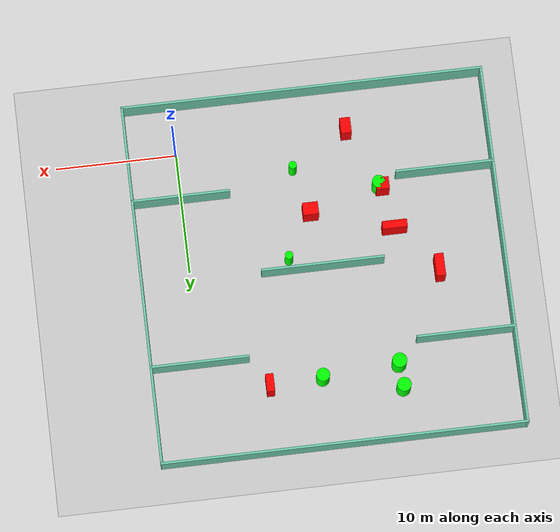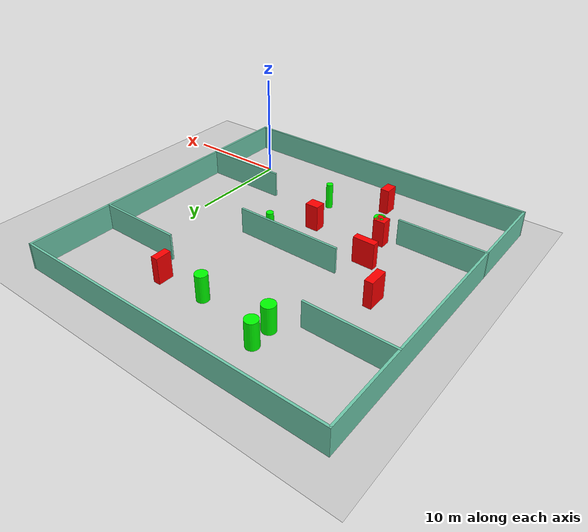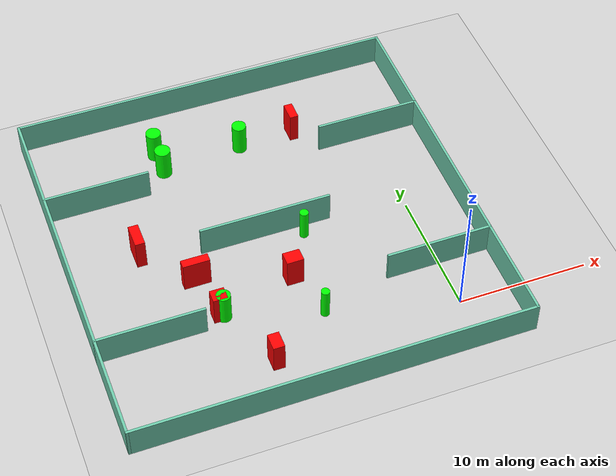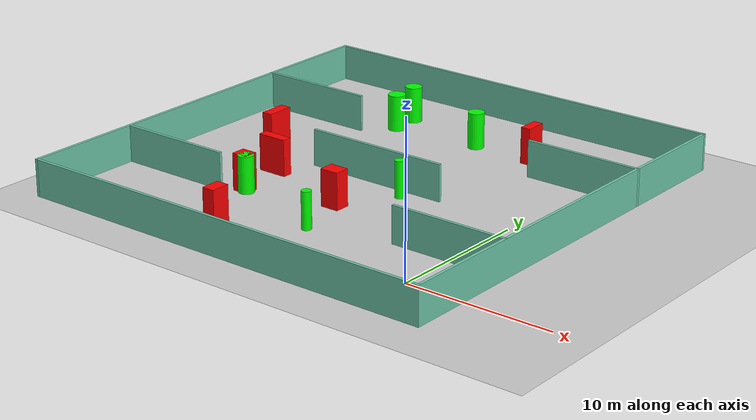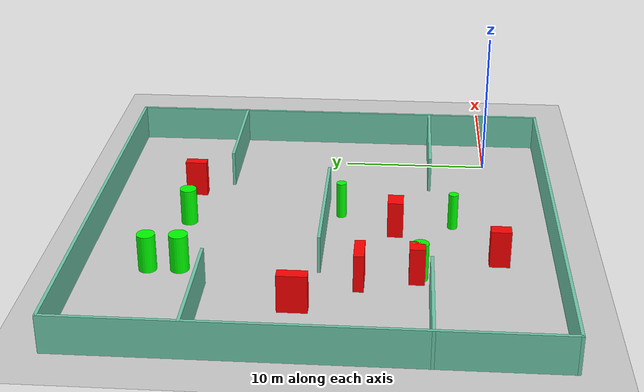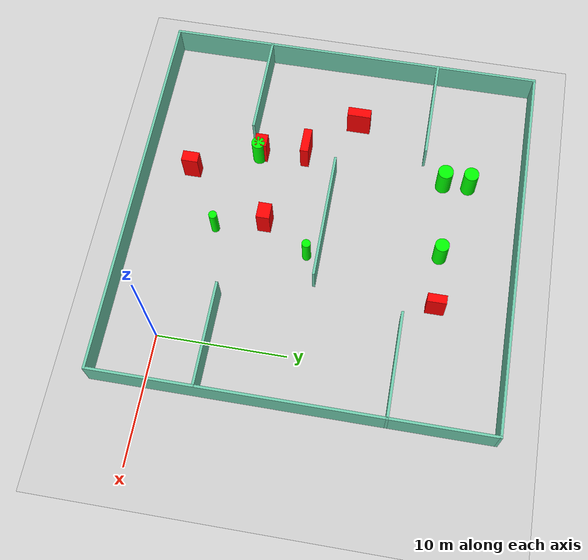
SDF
<sdf version="1.7">
 <world name="default">
  <light name="sun" type="directional">
   <pose>0 0 10 0 -0 0</pose>
   <diffuse>0.8 0.8 0.8 1</diffuse>
   <specular>0.2 0.2 0.2 1</specular>
   <attenuation>
    <range>1000</range>
    <constant>0.9</constant>
    <linear>0.01</linear>
    <quadratic>0.001</quadratic>
   </attenuation>
   <direction>-0.5 0.1 -0.9</direction>
   <spot><inner_angle>0</inner_angle><outer_angle>0</outer_angle><falloff>0</falloff></spot>
  </light>
  <model name="ground_plane">
   <static>1</static>
   <link name="link">
    <collision name="collision">
     <geometry><plane><normal>0 0 1</normal><size>100 100</size></plane></geometry>
     <surface>
      <contact><collide_bitmask>65535</collide_bitmask></contact>
      <friction><ode><mu>100</mu><mu2>50</mu2></ode></friction>
     </surface>
    </collision>
    <visual name="visual">
     <cast_shadows>0</cast_shadows>
     <geometry><plane><normal>0 0 1</normal><size>100 100</size></plane></geometry>
     <material>
      <script><uri>file://media/materials/scripts/gazebo.material</uri><name>Gazebo/Grey</name></script>
     </material>
    </visual>
   </link>
  </model>
  <gravity>0 0 -9.8</gravity>
  <magnetic_field>6e-06 2.3e-05 -4.2e-05</magnetic_field>
  <atmosphere type="adiabatic"/>
  <physics type="ode">
   <max_step_size>0.001</max_step_size>
   <real_time_factor>1</real_time_factor>
   <real_time_update_rate>1000</real_time_update_rate>
  </physics>
  <scene><ambient>0.4 0.4 0.4 1</ambient><background>0.7 0.7 0.7 1</background><shadows>1</shadows></scene>
  <spherical_coordinates>
   <surface_model>EARTH_WGS84</surface_model>
   <latitude_deg>0</latitude_deg>
   <longitude_deg>0</longitude_deg>
   <elevation>0</elevation>
   <heading_deg>0</heading_deg>
  </spherical_coordinates>
  <model name="my_base_walls">
   <link name="Wall_10">
    <collision name="Wall_10_Collision">
     <geometry><box><size>8.2 0.2 2.5</size></box></geometry>
     <pose>0 0 1.25 0 -0 0</pose>
    </collision>
    <visual name="Wall_10_Visual">
     <pose>0 0 1.25 0 -0 0</pose>
     <geometry><box><size>8.2 0.2 2.5</size></box></geometry>
     <material>
      <script><uri>file://media/materials/scripts/gazebo.material</uri><name>Gazebo/Grey</name></script>
      <ambient>0.435294 0.796078 0.67451 1</ambient>
     </material>
     <meta><layer>0</layer></meta>
    </visual>
    <pose>-11 -7 0 0 -0 0</pose>
   </link>
   <link name="Wall_12">
    <collision name="Wall_12_Collision">
     <geometry><box><size>8.2 0.2 2.5</size></box></geometry>
     <pose>0 0 1.25 0 -0 0</pose>
    </collision>
    <visual name="Wall_12_Visual">
     <pose>0 0 1.25 0 -0 0</pose>
     <geometry><box><size>8.2 0.2 2.5</size></box></geometry>
     <material>
      <script><uri>file://media/materials/scripts/gazebo.material</uri><name>Gazebo/Grey</name></script>
      <ambient>0.435294 0.796078 0.67451 1</ambient>
     </material>
     <meta><layer>0</layer></meta>
    </visual>
    <pose>-11 7 0 0 -0 0</pose>
   </link>
   <link name="Wall_14">
    <collision name="Wall_14_Collision">
     <geometry><box><size>8.2 0.2 2.5</size></box></geometry>
     <pose>0 0 1.25 0 -0 0</pose>
    </collision>
    <visual name="Wall_14_Visual">
     <pose>0 0 1.25 0 -0 0</pose>
     <geometry><box><size>8.2 0.2 2.5</size></box></geometry>
     <material>
      <script><uri>file://media/materials/scripts/gazebo.material</uri><name>Gazebo/Grey</name></script>
      <ambient>0.435294 0.796078 0.67451 1</ambient>
     </material>
     <meta><layer>0</layer></meta>
    </visual>
    <pose>11 7 0 0 -0 3.14159</pose>
   </link>
   <link name="Wall_16">
    <collision name="Wall_16_Collision">
     <geometry><box><size>10.2 0.2 2.5</size></box></geometry>
     <pose>0 0 1.25 0 -0 0</pose>
    </collision>
    <visual name="Wall_16_Visual">
     <pose>0 0 1.25 0 -0 0</pose>
     <geometry><box><size>10.2 0.2 2.5</size></box></geometry>
     <material>
      <script><uri>file://media/materials/scripts/gazebo.material</uri><name>Gazebo/Grey</name></script>
      <ambient>0.435294 0.796078 0.67451 1</ambient>
     </material>
     <meta><layer>0</layer></meta>
    </visual>
    <pose>0 0 0 0 -0 3.14159</pose>
   </link>
   <link name="Wall_2">
    <collision name="Wall_2_Collision">
     <geometry><box><size>30.2 0.2 2.5</size></box></geometry>
     <pose>0 0 1.25 0 -0 0</pose>
    </collision>
    <visual name="Wall_2_Visual">
     <pose>0 0 1.25 0 -0 0</pose>
     <geometry><box><size>30.2 0.2 2.5</size></box></geometry>
     <material>
      <script><uri>file://media/materials/scripts/gazebo.material</uri><name>Gazebo/Grey</name></script>
      <ambient>0.435294 0.796078 0.67451 1</ambient>
     </material>
     <meta><layer>0</layer></meta>
    </visual>
    <pose>0 -15 0 0 -0 3.14159</pose>
   </link>
   <link name="Wall_3">
    <collision name="Wall_3_Collision">
     <geometry><box><size>30.2 0.2 2.5</size></box></geometry>
     <pose>0 0 1.25 0 -0 0</pose>
    </collision>
    <visual name="Wall_3_Visual">
     <pose>0 0 1.25 0 -0 0</pose>
     <geometry><box><size>30.2 0.2 2.5</size></box></geometry>
     <material>
      <script><uri>file://media/materials/scripts/gazebo.material</uri><name>Gazebo/Grey</name></script>
      <ambient>0.435294 0.796078 0.67451 1</ambient>
     </material>
     <meta><layer>0</layer></meta>
    </visual>
    <pose>-15 0 0 0 -0 1.5708</pose>
   </link>
   <link name="Wall_4">
    <collision name="Wall_4_Collision">
     <geometry><box><size>30.2 0.2 2.5</size></box></geometry>
     <pose>0 0 1.25 0 -0 0</pose>
    </collision>
    <visual name="Wall_4_Visual">
     <pose>0 0 1.25 0 -0 0</pose>
     <geometry><box><size>30.2 0.2 2.5</size></box></geometry>
     <material>
      <script><uri>file://media/materials/scripts/gazebo.material</uri><name>Gazebo/Grey</name></script>
      <ambient>0.435294 0.796078 0.67451 1</ambient>
     </material>
     <meta><layer>0</layer></meta>
    </visual>
    <pose>0 15 0 0 -0 0</pose>
   </link>
   <link name="Wall_6">
    <collision name="Wall_6_Collision">
     <geometry><box><size>30.2 0.2 2.5</size></box></geometry>
     <pose>0 0 1.25 0 -0 0</pose>
    </collision>
    <visual name="Wall_6_Visual">
     <pose>0 0 1.25 0 -0 0</pose>
     <geometry><box><size>30.2 0.2 2.5</size></box></geometry>
     <material>
      <script><uri>file://media/materials/scripts/gazebo.material</uri><name>Gazebo/Grey</name></script>
      <ambient>0.435294 0.796078 0.67451 1</ambient>
     </material>
     <meta><layer>0</layer></meta>
    </visual>
    <pose>15 0 0 0 -0 1.5708</pose>
   </link>
   <link name="Wall_8">
    <collision name="Wall_8_Collision">
     <geometry><box><size>8.2 0.2 2.5</size></box></geometry>
     <pose>0 0 1.25 0 -0 0</pose>
    </collision>
    <visual name="Wall_8_Visual">
     <pose>0 0 1.25 0 -0 0</pose>
     <geometry><box><size>8.2 0.2 2.5</size></box></geometry>
     <material>
      <script><uri>file://media/materials/scripts/gazebo.material</uri><name>Gazebo/Grey</name></script>
      <ambient>0.435294 0.796078 0.67451 1</ambient>
     </material>
     <meta><layer>0</layer></meta>
    </visual>
    <pose>11 -7 0 0 -0 3.14159</pose>
   </link>
   <static>1</static>
   <pose>-11 11 0 0 -0 0</pose>
  </model>
  <model name="cylinder1">
   <static>1</static>
   <link name="link">
    <inertial>
     <mass>1</mass>
     <inertia><ixx>0.5</ixx><ixy>0</ixy><ixz>0</ixz><iyy>0.5</iyy><iyz>0</iyz><izz>1</izz></inertia>
    </inertial>
    <collision name="collision">
     <geometry><cylinder><radius>0.32503208350156415</radius><length>2.5</length></cylinder></geometry>
    </collision>
    <visual name="visual">
     <geometry><cylinder><radius>0.32503208350156415</radius><length>2.5</length></cylinder></geometry>
     <material>
      <ambient>0 1 0 1</ambient>
      <diffuse>0 1 0 1</diffuse>
      <specular>0.1 0.1 0.1 1</specular>
      <emissive>0 0 0 0</emissive>
     </material>
    </visual>
   </link>
   <pose>-9.506777463073814 2.484654667209485 1.25 0 0 0</pose>
  </model>
  <model name="cylinder2">
   <static>1</static>
   <link name="link">
    <inertial>
     <mass>1</mass>
     <inertia><ixx>0.5</ixx><ixy>0</ixy><ixz>0</ixz><iyy>0.5</iyy><iyz>0</iyz><izz>1</izz></inertia>
    </inertial>
    <collision name="collision">
     <geometry><cylinder><radius>0.531184910102734</radius><length>2.5</length></cylinder></geometry>
    </collision>
    <visual name="visual">
     <geometry><cylinder><radius>0.531184910102734</radius><length>2.5</length></cylinder></geometry>
     <material>
      <ambient>0 1 0 1</ambient>
      <diffuse>0 1 0 1</diffuse>
      <specular>0.1 0.1 0.1 1</specular>
      <emissive>0 0 0 0</emissive>
     </material>
    </visual>
   </link>
   <pose>-16.390960185490286 4.689138535194742 1.25 0 0 0</pose>
  </model>
  <model name="cylinder3">
   <static>1</static>
   <link name="link">
    <inertial>
     <mass>1</mass>
     <inertia><ixx>0.5</ixx><ixy>0</ixy><ixz>0</ixz><iyy>0.5</iyy><iyz>0</iyz><izz>1</izz></inertia>
    </inertial>
    <collision name="collision">
     <geometry><cylinder><radius>0.5548369184976646</radius><length>2.5</length></cylinder></geometry>
    </collision>
    <visual name="visual">
     <geometry><cylinder><radius>0.5548369184976646</radius><length>2.5</length></cylinder></geometry>
     <material>
      <ambient>0 1 0 1</ambient>
      <diffuse>0 1 0 1</diffuse>
      <specular>0.1 0.1 0.1 1</specular>
      <emissive>0 0 0 0</emissive>
     </material>
    </visual>
   </link>
   <pose>-9.904642141400185 20.25195683343708 1.25 0 0 0</pose>
  </model>
  <model name="cylinder4">
   <static>1</static>
   <link name="link">
    <inertial>
     <mass>1</mass>
     <inertia><ixx>0.5</ixx><ixy>0</ixy><ixz>0</ixz><iyy>0.5</iyy><iyz>0</iyz><izz>1</izz></inertia>
    </inertial>
    <collision name="collision">
     <geometry><cylinder><radius>0.5859135077147319</radius><length>2.5</length></cylinder></geometry>
    </collision>
    <visual name="visual">
     <geometry><cylinder><radius>0.5859135077147319</radius><length>2.5</length></cylinder></geometry>
     <material>
      <ambient>0 1 0 1</ambient>
      <diffuse>0 1 0 1</diffuse>
      <specular>0.1 0.1 0.1 1</specular>
      <emissive>0 0 0 0</emissive>
     </material>
    </visual>
   </link>
   <pose>-16.381108882930192 21.815543190001534 1.25 0 0 0</pose>
  </model>
  <model name="cylinder5">
   <static>1</static>
   <link name="link">
    <inertial>
     <mass>1</mass>
     <inertia><ixx>0.5</ixx><ixy>0</ixy><ixz>0</ixz><iyy>0.5</iyy><iyz>0</iyz><izz>1</izz></inertia>
    </inertial>
    <collision name="collision">
     <geometry><cylinder><radius>0.6089186860825042</radius><length>2.5</length></cylinder></geometry>
    </collision>
    <visual name="visual">
     <geometry><cylinder><radius>0.6089186860825042</radius><length>2.5</length></cylinder></geometry>
     <material>
      <ambient>0 1 0 1</ambient>
      <diffuse>0 1 0 1</diffuse>
      <specular>0.1 0.1 0.1 1</specular>
      <emissive>0 0 0 0</emissive>
     </material>
    </visual>
   </link>
   <pose>-16.259439287838042 19.7925890406398 1.25 0 0 0</pose>
  </model>
  <model name="cylinder6">
   <static>1</static>
   <link name="link">
    <inertial>
     <mass>1</mass>
     <inertia><ixx>0.5</ixx><ixy>0</ixy><ixz>0</ixz><iyy>0.5</iyy><iyz>0</iyz><izz>1</izz></inertia>
    </inertial>
    <collision name="collision">
     <geometry><cylinder><radius>0.33980093094506675</radius><length>2.5</length></cylinder></geometry>
    </collision>
    <visual name="visual">
     <geometry><cylinder><radius>0.33980093094506675</radius><length>2.5</length></cylinder></geometry>
     <material>
      <ambient>0 1 0 1</ambient>
      <diffuse>0 1 0 1</diffuse>
      <specular>0.1 0.1 0.1 1</specular>
      <emissive>0 0 0 0</emissive>
     </material>
    </visual>
   </link>
   <pose>-8.30810814906311 10.022439654519435 1.25 0 0 0</pose>
  </model>
  <model name="box1">
   <static>1</static>
   <link name="link">
    <inertial>
     <mass>1</mass>
     <inertia><ixx>0.083</ixx><ixy>0</ixy><ixz>0</ixz><iyy>0.083</iyy><iyz>0</iyz><izz>0.083</izz></inertia>
    </inertial>
    <collision name="collision">
     <geometry><box><size>1.2960846443703713 1.0441321281338252 2.5</size></box></geometry>
    </collision>
    <visual name="visual">
     <geometry><box><size>1.2960846443703713 1.0441321281338252 2.5</size></box></geometry>
     <material>
      <ambient>1 0 0 1</ambient>
      <diffuse>1 0 0 1</diffuse>
      <specular>0.1 0.1 0.1 1</specular>
      <emissive>0 0 0 0</emissive>
     </material>
    </visual>
    <sensor name="my_contact" type="contact">
     <contact><collision>box_collision</collision><topic>__default_topic__</topic></contact>
    </sensor>
   </link>
   <pose>-10.533042981859307 6.3116715160992705 1.25 0 0 0</pose>
  </model>
  <model name="box2">
   <static>1</static>
   <link name="link">
    <inertial>
     <mass>1</mass>
     <inertia><ixx>0.083</ixx><ixy>0</ixy><ixz>0</ixz><iyy>0.083</iyy><iyz>0</iyz><izz>0.083</izz></inertia>
    </inertial>
    <collision name="collision">
     <geometry><box><size>2.059563089437595 0.6615010031199231 2.5</size></box></geometry>
    </collision>
    <visual name="visual">
     <geometry><box><size>2.059563089437595 0.6615010031199231 2.5</size></box></geometry>
     <material>
      <ambient>1 0 0 1</ambient>
      <diffuse>1 0 0 1</diffuse>
      <specular>0.1 0.1 0.1 1</specular>
      <emissive>0 0 0 0</emissive>
     </material>
    </visual>
    <sensor name="my_contact" type="contact">
     <contact><collision>box_collision</collision><topic>__default_topic__</topic></contact>
    </sensor>
   </link>
   <pose>-17.274505283792795 8.423981996441444 1.25 0 0 0</pose>
  </model>
  <model name="box3">
   <static>1</static>
   <link name="link">
    <inertial>
     <mass>1</mass>
     <inertia><ixx>0.083</ixx><ixy>0</ixy><ixz>0</ixz><iyy>0.083</iyy><iyz>0</iyz><izz>0.083</izz></inertia>
    </inertial>
    <collision name="collision">
     <geometry><box><size>1.0921810758478663 0.993474909755601 2.5</size></box></geometry>
    </collision>
    <visual name="visual">
     <geometry><box><size>1.0921810758478663 0.993474909755601 2.5</size></box></geometry>
     <material>
      <ambient>1 0 0 1</ambient>
      <diffuse>1 0 0 1</diffuse>
      <specular>0.1 0.1 0.1 1</specular>
      <emissive>0 0 0 0</emissive>
     </material>
    </visual>
    <sensor name="my_contact" type="contact">
     <contact><collision>box_collision</collision><topic>__default_topic__</topic></contact>
    </sensor>
   </link>
   <pose>-16.69024932339051 4.8663281567760155 1.25 0 0 0</pose>
  </model>
  <model name="box4">
   <static>1</static>
   <link name="link">
    <inertial>
     <mass>1</mass>
     <inertia><ixx>0.083</ixx><ixy>0</ixy><ixz>0</ixz><iyy>0.083</iyy><iyz>0</iyz><izz>0.083</izz></inertia>
    </inertial>
    <collision name="collision">
     <geometry><box><size>0.6763139286871886 1.4712077305291746 2.5</size></box></geometry>
    </collision>
    <visual name="visual">
     <geometry><box><size>0.6763139286871886 1.4712077305291746 2.5</size></box></geometry>
     <material>
      <ambient>1 0 0 1</ambient>
      <diffuse>1 0 0 1</diffuse>
      <specular>0.1 0.1 0.1 1</specular>
      <emissive>0 0 0 0</emissive>
     </material>
    </visual>
    <sensor name="my_contact" type="contact">
     <contact><collision>box_collision</collision><topic>__default_topic__</topic></contact>
    </sensor>
   </link>
   <pose>-5.5298493600570175 20.401731886634167 1.25 0 0 0</pose>
  </model>
  <model name="box5">
   <static>1</static>
   <link name="link">
    <inertial>
     <mass>1</mass>
     <inertia><ixx>0.083</ixx><ixy>0</ixy><ixz>0</ixz><iyy>0.083</iyy><iyz>0</iyz><izz>0.083</izz></inertia>
    </inertial>
    <collision name="collision">
     <geometry><box><size>0.7580564629296296 1.8802564406984492 2.5</size></box></geometry>
    </collision>
    <visual name="visual">
     <geometry><box><size>0.7580564629296296 1.8802564406984492 2.5</size></box></geometry>
     <material>
      <ambient>1 0 0 1</ambient>
      <diffuse>1 0 0 1</diffuse>
      <specular>0.1 0.1 0.1 1</specular>
      <emissive>0 0 0 0</emissive>
     </material>
    </visual>
    <sensor name="my_contact" type="contact">
     <contact><collision>box_collision</collision><topic>__default_topic__</topic></contact>
    </sensor>
   </link>
   <pose>-20.542234115265558 12.248429821566265 1.25 0 0 0</pose>
  </model>
  <model name="box6">
   <static>1</static>
   <link name="link">
    <inertial>
     <mass>1</mass>
     <inertia><ixx>0.083</ixx><ixy>0</ixy><ixz>0</ixz><iyy>0.083</iyy><iyz>0</iyz><izz>0.083</izz></inertia>
    </inertial>
    <collision name="collision">
     <geometry><box><size>0.8692705534967045 1.3077627633627071 2.5</size></box></geometry>
    </collision>
    <visual name="visual">
     <geometry><box><size>0.8692705534967045 1.3077627633627071 2.5</size></box></geometry>
     <material>
      <ambient>1 0 0 1</ambient>
      <diffuse>1 0 0 1</diffuse>
      <specular>0.1 0.1 0.1 1</specular>
      <emissive>0 0 0 0</emissive>
     </material>
    </visual>
    <sensor name="my_contact" type="contact">
     <contact><collision>box_collision</collision><topic>__default_topic__</topic></contact>
    </sensor>
   </link>
   <pose>-14.254544798194093 -0.37374337550379133 1.25 0 0 0</pose>
  </model>
 </world>
</sdf>
